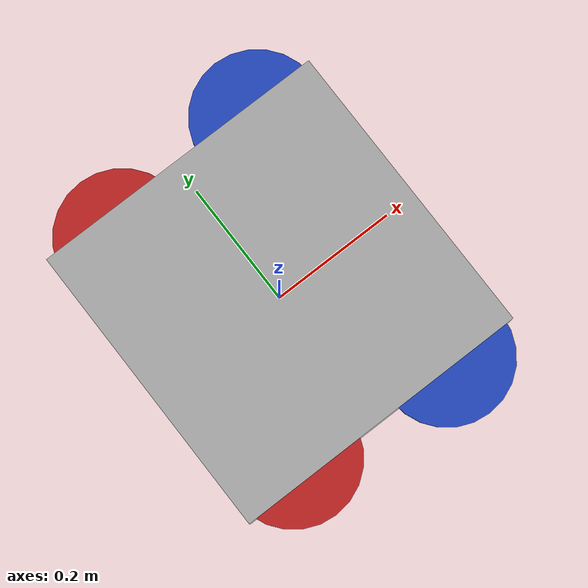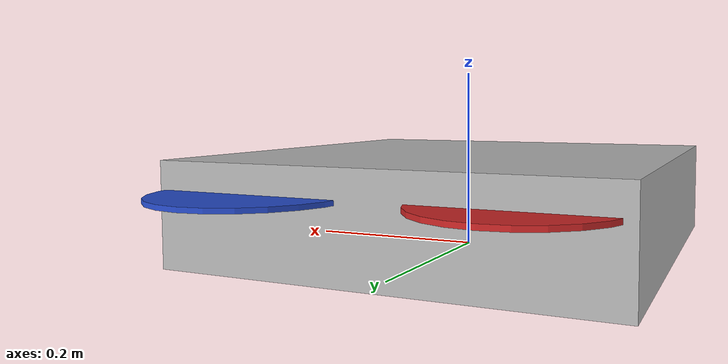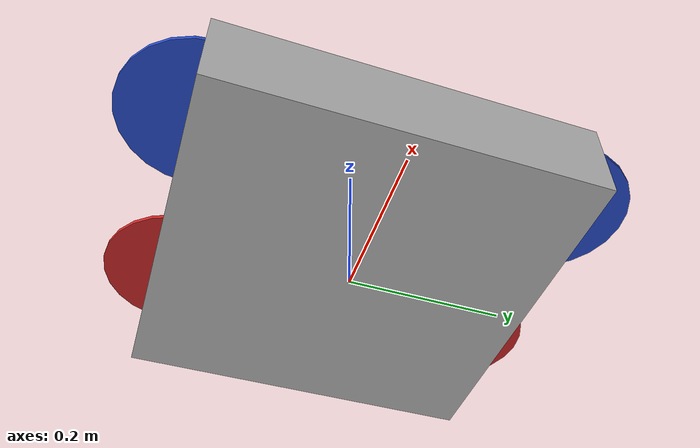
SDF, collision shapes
<?xml version="1.0"?>
<sdf version="1.6">
    <model name="X3_custom">
        <pose>0 0 0.053302 0 0 0</pose>
        <link name="base_link">
            <pose frame="">0 0 0 0 -0 0</pose>
            <inertial>
                <pose frame="">0 0 0 0 -0 0</pose>
                <mass>1.5</mass>
                <inertia>
                  <ixx>0.025</ixx>
                  <ixy>0</ixy>
                  <ixz>0</ixz>
                  <iyy>0.009</iyy>
                  <iyz>0</iyz>
                  <izz>0.033</izz>
                </inertia>
            </inertial>
            <collision name="base_link_inertia_collision">
                <pose frame="">0 0 0 0 -0 0</pose>
                <geometry>
                    <box>
                        <size>0.47 0.47 0.11</size>
                    </box>
                </geometry>
            </collision>
            <visual name="base_link_inertia_visual">
                <pose frame="">0 0 0 0 -0 0</pose>
                <geometry>
                    <mesh>
                        <scale>1 1 1</scale>
                        <uri>model://X3_custom/meshes/x3.dae</uri>
                    </mesh>
                </geometry>
            </visual>
            <visual name="marker_visual_1">
                <pose frame="">-0.07 0 0.065 0 -0 0</pose>
                <geometry>
                    <mesh>
                        <uri>model://X3_custom/meshes/led.dae</uri>
                    </mesh>
                </geometry>
            </visual>
            <visual name="downward_flashlight_visual">
                <pose frame="">-0.043704 0 0.087914 -0.2 0.000158 -1.57002</pose>
                <geometry>
                    <mesh>
                        <scale>0.01 0.01 0.01</scale>
                        <uri>model://X3_custom/meshes/spotlight.dae</uri>
                    </mesh>
                </geometry>
            </visual>
            <visual name="left_flashlight_visual">
                <pose frame="">-0.061985 0.060826 0.046102 0.06 -4.8e-05 -1.27</pose>
                <geometry>
                    <mesh>
                        <scale>0.01 0.01 0.01</scale>
                        <uri>model://X3_custom/meshes/spotlight.dae</uri>
                    </mesh>
                </geometry>
            </visual>
            <visual name="marker_visual_2">
                <pose frame="">-0.08 0.037 0.04 -1.0472 -0 0.2</pose>
                <geometry>
                    <mesh>
                        <uri>model://X3_custom/meshes/led.dae</uri>
                    </mesh>
                </geometry>
            </visual>
            <visual name="right_flashlight_visual">
                <pose frame="">-0.061985 -0.060826 0.046102 0.06 -4.8e-05 -1.87</pose>
                <geometry>
                    <mesh>
                        <scale>0.01 0.01 0.01</scale>
                        <uri>model://X3_custom/meshes/spotlight.dae</uri>
                    </mesh>
                </geometry>
            </visual>
            <visual name="marker_visual_3">
                <pose frame="">-0.08 -0.035 0.04 1.0472 -0 -0.1</pose>
                <geometry>
                    <mesh>
                        <uri>model://X3_custom/meshes/led.dae</uri>
                    </mesh>
                </geometry>
            </visual>

            <light name="right_light_source" type="spot">
                <pose frame="">0.01 -0.08 0.05 3.131592653589795 -1.5107899999999999 2.841592653589791</pose>
                <attenuation>
                    <range>15</range>
                    <linear>0</linear>
                    <constant>0.1</constant>
                    <quadratic>0.01</quadratic>
                </attenuation>
                <diffuse>0.8 0.8 0.5 1</diffuse>
                <specular>0.8 0.8 0.5 1</specular>
                <spot>
                    <inner_angle>1</inner_angle>
                    <outer_angle>1.1</outer_angle>
                    <falloff>1</falloff>
                </spot>
                <direction>0 0 -1</direction>
                <cast_shadows>1</cast_shadows>
                <light_on>true</light_on>
                <visualize>false</visualize>
            </light>
            <light name="downward_flashlight_source" type="spot">
                <pose frame="">0.03 0 0.075 -0.01 -1.3708026535897933 0</pose>
                <attenuation>
                    <range>15</range>
                    <linear>0</linear>
                    <constant>0.1</constant>
                    <quadratic>0.01</quadratic>
                </attenuation>
                <diffuse>0.8 0.8 0.5 1</diffuse>
                <specular>0.8 0.8 0.5 1</specular>
                <spot>
                    <inner_angle>1</inner_angle>
                    <outer_angle>1.1</outer_angle>
                    <falloff>1</falloff>
                </spot>
                <direction>0 0 -1</direction>
                <cast_shadows>1</cast_shadows>
                <light_on>true</light_on>
                <visualize>false</visualize>
            </light>
            <light name="left_flashlight_source" type="spot">
                <pose frame="">0.01 0.08 0.05 3.131592653589795 -1.5107899999999999 -2.841592653589791</pose>
                <attenuation>
                    <range>15</range>
                    <linear>0</linear>
                    <constant>0.1</constant>
                    <quadratic>0.01</quadratic>
                </attenuation>
                <diffuse>0.8 0.8 0.5 1</diffuse>
                <specular>0.8 0.8 0.5 1</specular>
                <spot>
                    <inner_angle>1</inner_angle>
                    <outer_angle>1.1</outer_angle>
                    <falloff>1</falloff>
                </spot>
                <direction>0 0 -1</direction>
                <cast_shadows>1</cast_shadows>
                <light_on>true</light_on>
                <visualize>false</visualize>
            </light>

            <sensor name="imu_sensor" type="imu">
                <topic>imu</topic>
                <ignition_frame_id>base_link</ignition_frame_id>
                <always_on>1</always_on>
                <update_rate>250</update_rate>
                <imu>
                    <enable_orientation>1</enable_orientation>
                                <mean>0</mean>
                                <stddev>0.009</stddev>
                                <bias_mean>0.00075</bias_mean>
                                <bias_stddev>0.005</bias_stddev>
                                <dynamic_bias_stddev>0.00002</dynamic_bias_stddev>
                </imu>

            </sensor>
            <sensor name="air_pressure" type="air_pressure">
                <always_on>1</always_on>
                <update_rate>20</update_rate>
                <air_pressure>
                    <reference_altitude>0</reference_altitude>
                    <noise type="gaussian">
                        <mean>0.00000008</mean>
                    </noise>
                </air_pressure>
            </sensor>
            <sensor name="magnetometer" type="magnetometer">
                <always_on>1</always_on>
                <update_rate>20</update_rate>
                <magnetometer>
                    <x>
                        <noise type="gaussian">
                            <mean>0.000000080</mean>
                            <bias_mean>0.000000400</bias_mean>
                        </noise>
                    </x>
                    <y>
                        <noise type="gaussian">
                            <mean>0.000000080</mean>
                            <bias_mean>0.000000400</bias_mean>
                        </noise>
                    </y>
                    <z>
                        <noise type="gaussian">
                            <mean>0.000000080</mean>
                            <bias_mean>0.000000400</bias_mean>
                        </noise>
                    </z>
                </magnetometer>
            </sensor>
            <sensor name='gpu_lidar' type='gpu_lidar'>
                <topic>scan</topic>
                <ignition_frame_id>base_link</ignition_frame_id>
                <update_rate>10</update_rate>
                <ray>
                    <scan>
                        <horizontal>
                            <samples>640</samples>
                            <resolution>1</resolution>
                            <min_angle>-3.1412</min_angle>
                            <max_angle>3.1412</max_angle>
                        </horizontal>
                        <vertical>
                            <samples>1</samples>
                            <resolution>0.01</resolution>
                            <min_angle>0</min_angle>
                            <max_angle>0</max_angle>
                        </vertical>
                    </scan>
                    <range>
                        <min>0.5</min>
                        <max>100.0</max>
                        <resolution>0.01</resolution>
                    </range>
                </ray>
                <always_on>1</always_on>
                <visualize>true</visualize>
            </sensor>

            <visual name="camera_visual">
                <pose>0.1 0 0 0 0 0</pose>
                <geometry>
                    <box>
                        <size>0.02 0.02 0.02</size>
                    </box>
                </geometry>
            </visual>

            <!-- RGBD Camera Sensor -->
            <sensor name="rgbd_camera" type="rgbd">
                <ignition_frame_id>camera_link</ignition_frame_id>
                <pose>0.1 0 0.0 0 0 0</pose>
                <always_on>1</always_on>
                <update_rate>30</update_rate>
                <camera>
                    <horizontal_fov>1.5708</horizontal_fov>
                    <image>
                        <width>640</width>
                        <height>480</height>
                        <format>R8G8B8</format>
                    </image>
                    <clip>
                        <near>0.01</near>
                        <far>100.0</far>
                    </clip>
                    <noise>
                        <type>gaussian</type>
                        <mean>0.0</mean>
                        <stddev>0.01</stddev>
                    </noise>
                    <topic>rgbd_camera/rgb/image</topic>
                </camera>
                <visualize>true</visualize>
            </sensor>

            <sensor name="camera_left" type="camera">
                <ignition_frame_id>camera_left</ignition_frame_id>
                <pose>0.1 -0.025 0 0 0 0</pose>
                <always_on>1</always_on>
                <update_rate>20</update_rate>
                <camera name="camera_left">
                    <horizontal_fov>2</horizontal_fov>
                    <lens>
                        <intrinsics>
                          <!-- fx = fy = width / ( 2 * tan (hfov / 2 ) ) -->
                          <fx>277.1</fx>
                          <fy>277.1</fy>
                          <!-- cx = ( width + 1 ) / 2 -->
                          <cx>160.5</cx>
                          <!-- cy = ( height + 1 ) / 2 -->
                          <cy>120.5</cy>
                          <s>0</s>
                        </intrinsics>
                    </lens>
                    <distortion>
                        <k1>0.0</k1>
                        <k2>0.0</k2>
                        <k3>0.0</k3>
                        <p1>0.0</p1>
                        <p2>0.0</p2>
                        <center>0.5 0.5</center>
                    </distortion>
                    <image>
                        <width>320</width>
                        <height>240</height>
                        <format>R8G8B8</format>
                    </image>
                    <clip>
                        <near>0.01</near>
                        <far>300</far>
                    </clip>
                    <noise>
                        <type>gaussian</type>
                        <mean>0</mean>
                        <stddev>0.007</stddev>
                    </noise>
                </camera>
            </sensor>

            <sensor name="camera_right" type="camera">
                <ignition_frame_id>camera_right</ignition_frame_id>
                <pose>0.1 -0.025 0 0 0 0</pose>
                <always_on>1</always_on>
                <update_rate>20</update_rate>
                <camera name="camera_right">
                    <horizontal_fov>2</horizontal_fov>
                    <lens>
                        <intrinsics>
                          <!-- fx = fy = width / ( 2 * tan (hfov / 2 ) ) -->
                          <fx>277.1</fx>
                          <fy>277.1</fy>
                          <!-- cx = ( width + 1 ) / 2 -->
                          <cx>160.5</cx>
                          <!-- cy = ( height + 1 ) / 2 -->
                          <cy>120.5</cy>
                          <s>0</s>
                        </intrinsics>
                    </lens>
                    <distortion>
                        <k1>0.0</k1>
                        <k2>0.0</k2>
                        <k3>0.0</k3>
                        <p1>0.0</p1>
                        <p2>0.0</p2>
                        <center>0.5 0.5</center>
                    </distortion>
                    <image>
                        <width>320</width>
                        <height>240</height>
                        <format>R8G8B8</format>
                    </image>
                    <clip>
                        <near>0.01</near>
                        <far>300</far>
                    </clip>
                    <noise>
                        <type>gaussian</type>
                        <mean>0</mean>
                        <stddev>0.007</stddev>
                    </noise>
                </camera>
            </sensor>

        </link>
        <link name="rotor_0">
            <pose frame="">0.13 -0.22 0.023 0 -0 0</pose>
            <inertial>
                <pose frame="">0 0 0 0 -0 0</pose>
                <mass>0.005</mass>
                <inertia>
                    <ixx>9.75e-07</ixx>
                    <ixy>0</ixy>
                    <ixz>0</ixz>
                    <iyy>4.17041e-05</iyy>
                    <iyz>0</iyz>
                    <izz>4.26041e-05</izz>
                </inertia>
            </inertial>
            <collision name="rotor_0_collision">
                <pose frame="">0 0 0 0 -0 0</pose>
                <geometry>
                    <cylinder>
                        <length>0.005</length>
                        <radius>0.1</radius>
                    </cylinder>
                </geometry>
                <surface>
                    <contact>
                        <ode/>
                    </contact>
                    <friction>
                        <ode/>
                    </friction>
                </surface>
            </collision>
            <visual name="rotor_0_visual">
                <pose frame="">0 0 0 0 -0 0</pose>
                <geometry>
                    <mesh>
                        <scale>0.1 0.1 0.1</scale>
                        <uri>model://X3_custom/meshes/propeller_ccw.dae</uri>
                    </mesh>
                </geometry>
                <material>
                    <diffuse>0 0 1 1</diffuse>
                    <script>
                        <name>Gazebo/Blue</name>
                        <uri>file://media/materials/scripts/gazebo.material</uri>
                    </script>
                </material>
                <cast_shadows>0</cast_shadows>
            </visual>
            <gravity>1</gravity>
            <velocity_decay/>
        </link>
        <joint name="rotor_0_joint" type="revolute">
            <child>rotor_0</child>
            <parent>base_link</parent>
            <axis>
                <xyz>0 0 1</xyz>
                <limit>
                    <lower>-1e+16</lower>
                    <upper>1e+16</upper>
                </limit>
                <dynamics>
                    <spring_reference>0</spring_reference>
                    <spring_stiffness>0</spring_stiffness>
                </dynamics>
                <use_parent_model_frame>1</use_parent_model_frame>
            </axis>
        </joint>
        <link name="rotor_1">
            <pose frame="">-0.13 0.2 0.023 0 -0 0</pose>
            <inertial>
                <pose frame="">0 0 0 0 -0 0</pose>
                <mass>0.005</mass>
                <inertia>
                    <ixx>9.75e-07</ixx>
                    <ixy>0</ixy>
                    <ixz>0</ixz>
                    <iyy>4.17041e-05</iyy>
                    <iyz>0</iyz>
                    <izz>4.26041e-05</izz>
                </inertia>
            </inertial>
            <collision name="rotor_1_collision">
                <pose frame="">0 0 0 0 -0 0</pose>
                <geometry>
                    <cylinder>
                        <length>0.005</length>
                        <radius>0.1</radius>
                    </cylinder>
                </geometry>
                <surface>
                    <contact>
                        <ode/>
                    </contact>
                    <friction>
                        <ode/>
                    </friction>
                </surface>
            </collision>
            <visual name="rotor_1_visual">
                <pose frame="">0 0 0 0 -0 0</pose>
                <geometry>
                    <mesh>
                        <scale>0.1 0.1 0.1</scale>
                        <uri>model://X3_custom/meshes/propeller_ccw.dae</uri>
                    </mesh>
                </geometry>
                <material>
                    <diffuse>1 0 0 1</diffuse>
                    <script>
                        <name>Gazebo/Red</name>
                        <uri>file://media/materials/scripts/gazebo.material</uri>
                    </script>
                </material>
                <cast_shadows>0</cast_shadows>
            </visual>
            <gravity>1</gravity>
            <velocity_decay/>
        </link>
        <joint name="rotor_1_joint" type="revolute">
            <child>rotor_1</child>
            <parent>base_link</parent>
            <axis>
                <xyz>0 0 1</xyz>
                <limit>
                    <lower>-1e+16</lower>
                    <upper>1e+16</upper>
                </limit>
                <dynamics>
                    <spring_reference>0</spring_reference>
                    <spring_stiffness>0</spring_stiffness>
                </dynamics>
                <use_parent_model_frame>1</use_parent_model_frame>
            </axis>
        </joint>
        <link name="rotor_2">
            <pose frame="">0.13 0.22 0.023 0 -0 0</pose>
            <inertial>
                <pose frame="">0 0 0 0 -0 0</pose>
                <mass>0.005</mass>
                <inertia>
                    <ixx>9.75e-07</ixx>
                    <ixy>0</ixy>
                    <ixz>0</ixz>
                    <iyy>4.17041e-05</iyy>
                    <iyz>0</iyz>
                    <izz>4.26041e-05</izz>
                </inertia>
            </inertial>
            <collision name="rotor_2_collision">
                <pose frame="">0 0 0 0 -0 0</pose>
                <geometry>
                    <cylinder>
                        <length>0.005</length>
                        <radius>0.1</radius>
                    </cylinder>
                </geometry>
                <surface>
                    <contact>
                        <ode/>
                    </contact>
                    <friction>
                        <ode/>
                    </friction>
                </surface>
            </collision>
            <visual name="rotor_2_visual">
                <pose frame="">0 0 0 0 -0 0</pose>
                <geometry>
                    <mesh>
                        <scale>0.1 0.1 0.1</scale>
                        <uri>model://X3_custom/meshes/propeller_cw.dae</uri>
                    </mesh>
                </geometry>
                <material>
                    <diffuse>0 0 1 1</diffuse>
                    <script>
                        <name>Gazebo/Blue</name>
                        <uri>file://media/materials/scripts/gazebo.material</uri>
                    </script>
                </material>
                <cast_shadows>0</cast_shadows>
            </visual>
            <gravity>1</gravity>
            <velocity_decay/>
        </link>
        <joint name="rotor_2_joint" type="revolute">
            <child>rotor_2</child>
            <parent>base_link</parent>
            <axis>
                <xyz>0 0 1</xyz>
                <limit>
                    <lower>-1e+16</lower>
                    <upper>1e+16</upper>
                </limit>
                <dynamics>
                    <spring_reference>0</spring_reference>
                    <spring_stiffness>0</spring_stiffness>
                </dynamics>
                <use_parent_model_frame>1</use_parent_model_frame>
            </axis>
        </joint>
        <link name="rotor_3">
            <pose frame="">-0.13 -0.2 0.023 0 -0 0</pose>
            <inertial>
                <pose frame="">0 0 0 0 -0 0</pose>
                <mass>0.005</mass>
                <inertia>
                    <ixx>9.75e-07</ixx>
                    <ixy>0</ixy>
                    <ixz>0</ixz>
                    <iyy>4.17041e-05</iyy>
                    <iyz>0</iyz>
                    <izz>4.26041e-05</izz>
                </inertia>
            </inertial>
            <collision name="rotor_3_collision">
                <pose frame="">0 0 0 0 -0 0</pose>
                <geometry>
                    <cylinder>
                        <length>0.005</length>
                        <radius>0.1</radius>
                    </cylinder>
                </geometry>
                <surface>
                    <contact>
                        <ode/>
                    </contact>
                    <friction>
                        <ode/>
                    </friction>
                </surface>
            </collision>
            <visual name="rotor_3_visual">
                <pose frame="">0 0 0 0 -0 0</pose>
                <geometry>
                    <mesh>
                        <scale>0.1 0.1 0.1</scale>
                        <uri>model://X3_custom/meshes/propeller_cw.dae</uri>
                    </mesh>
                </geometry>
                <material>
                    <diffuse>1 0 0 1</diffuse>
                    <script>
                        <name>Gazebo/Red</name>
                        <uri>file://media/materials/scripts/gazebo.material</uri>
                    </script>
                </material>
                <cast_shadows>0</cast_shadows>
            </visual>
            <gravity>1</gravity>
            <velocity_decay/>
        </link>
        <joint name="rotor_3_joint" type="revolute">
            <child>rotor_3</child>
            <parent>base_link</parent>
            <axis>
                <xyz>0 0 1</xyz>
                <limit>
                    <lower>-1e+16</lower>
                    <upper>1e+16</upper>
                </limit>
                <dynamics>
                    <spring_reference>0</spring_reference>
                    <spring_stiffness>0</spring_stiffness>
                </dynamics>
                <use_parent_model_frame>1</use_parent_model_frame>
            </axis>
        </joint>

        <plugin
            filename="ignition-gazebo-multicopter-control-system"
            name="ignition::gazebo::systems::MulticopterVelocityControl">
            <robotNamespace>X3_custom</robotNamespace>
            <commandSubTopic>cmd_vel</commandSubTopic>
            <enableSubTopic>enable</enableSubTopic>
            <comLinkName>base_link</comLinkName>
            <velocityGain>2.7 2.7 2.7</velocityGain>
            <attitudeGain>2 3 0.15</attitudeGain>
            <angularRateGain>0.4 0.52 0.18</angularRateGain>
            <maximumLinearAcceleration>2 2 2</maximumLinearAcceleration>

            <rotorConfiguration>
            <rotor>
                <jointName>rotor_0_joint</jointName>
                <forceConstant>8.54858e-06</forceConstant>
                <momentConstant>0.016</momentConstant>
                <direction>1</direction>
            </rotor>
            <rotor>
                <jointName>rotor_1_joint</jointName>
                <forceConstant>8.54858e-06</forceConstant>
                <momentConstant>0.016</momentConstant>
                <direction>1</direction>
            </rotor>
            <rotor>
                <jointName>rotor_2_joint</jointName>
                <forceConstant>8.54858e-06</forceConstant>
                <momentConstant>0.016</momentConstant>
                <direction>-1</direction>
            </rotor>
            <rotor>
                <jointName>rotor_3_joint</jointName>
                <forceConstant>8.54858e-06</forceConstant>
                <momentConstant>0.016</momentConstant>
                <direction>-1</direction>
            </rotor>
            </rotorConfiguration>
        </plugin>
        <plugin
            filename="ignition-gazebo-multicopter-motor-model-system"
            name="gz::sim::systems::MulticopterMotorModel">
            <robotNamespace>X3_custom</robotNamespace>
            <jointName>rotor_0_joint</jointName>
            <linkName>rotor_0</linkName>
            <turningDirection>ccw</turningDirection>
            <timeConstantUp>0.0125</timeConstantUp>
            <timeConstantDown>0.025</timeConstantDown>
            <maxRotVelocity>800.0</maxRotVelocity>
            <motorConstant>8.54858e-06</motorConstant>
            <momentConstant>0.016</momentConstant>
            <commandSubTopic>gazebo/command/motor_speed</commandSubTopic>
            <motorNumber>0</motorNumber>
            <rotorDragCoefficient>8.06428e-05</rotorDragCoefficient>
            <rollingMomentCoefficient>1e-06</rollingMomentCoefficient>
            <motorSpeedPubTopic>motor_speed/0</motorSpeedPubTopic>
            <rotorVelocitySlowdownSim>10</rotorVelocitySlowdownSim>
            <motorType>velocity</motorType>
        </plugin>
        <plugin
            filename="ignition-gazebo-multicopter-motor-model-system"
            name="gz::sim::systems::MulticopterMotorModel">
            <robotNamespace>X3_custom</robotNamespace>
            <jointName>rotor_1_joint</jointName>
            <linkName>rotor_1</linkName>
            <turningDirection>ccw</turningDirection>
            <timeConstantUp>0.0125</timeConstantUp>
            <timeConstantDown>0.025</timeConstantDown>
            <maxRotVelocity>800.0</maxRotVelocity>
            <motorConstant>8.54858e-06</motorConstant>
            <momentConstant>0.016</momentConstant>
            <commandSubTopic>gazebo/command/motor_speed</commandSubTopic>
            <motorNumber>1</motorNumber>
            <rotorDragCoefficient>8.06428e-05</rotorDragCoefficient>
            <rollingMomentCoefficient>1e-06</rollingMomentCoefficient>
            <motorSpeedPubTopic>motor_speed/1</motorSpeedPubTopic>
            <rotorVelocitySlowdownSim>10</rotorVelocitySlowdownSim>
            <motorType>velocity</motorType>
        </plugin>
        <plugin
            filename="ignition-gazebo-multicopter-motor-model-system"
            name="gz::sim::systems::MulticopterMotorModel">
            <robotNamespace>X3_custom</robotNamespace>
            <jointName>rotor_2_joint</jointName>
            <linkName>rotor_2</linkName>
            <turningDirection>cw</turningDirection>
            <timeConstantUp>0.0125</timeConstantUp>
            <timeConstantDown>0.025</timeConstantDown>
            <maxRotVelocity>800.0</maxRotVelocity>
            <motorConstant>8.54858e-06</motorConstant>
            <momentConstant>0.016</momentConstant>
            <commandSubTopic>gazebo/command/motor_speed</commandSubTopic>
            <motorNumber>2</motorNumber>
            <rotorDragCoefficient>8.06428e-05</rotorDragCoefficient>
            <rollingMomentCoefficient>1e-06</rollingMomentCoefficient>
            <motorSpeedPubTopic>motor_speed/2</motorSpeedPubTopic>
            <rotorVelocitySlowdownSim>10</rotorVelocitySlowdownSim>
            <motorType>velocity</motorType>
        </plugin>
        <plugin
            filename="ignition-gazebo-multicopter-motor-model-system"
            name="gz::sim::systems::MulticopterMotorModel">
            <robotNamespace>X3_custom</robotNamespace>
            <jointName>rotor_3_joint</jointName>
            <linkName>rotor_3</linkName>
            <turningDirection>cw</turningDirection>
            <timeConstantUp>0.0125</timeConstantUp>
            <timeConstantDown>0.025</timeConstantDown>
            <maxRotVelocity>800.0</maxRotVelocity>
            <motorConstant>8.54858e-06</motorConstant>
            <momentConstant>0.016</momentConstant>
            <commandSubTopic>gazebo/command/motor_speed</commandSubTopic>
            <motorNumber>3</motorNumber>
            <rotorDragCoefficient>8.06428e-05</rotorDragCoefficient>
            <rollingMomentCoefficient>1e-06</rollingMomentCoefficient>
            <motorSpeedPubTopic>motor_speed/3</motorSpeedPubTopic>
            <rotorVelocitySlowdownSim>10</rotorVelocitySlowdownSim>
            <motorType>velocity</motorType>
        </plugin>

    </model>
</sdf>
